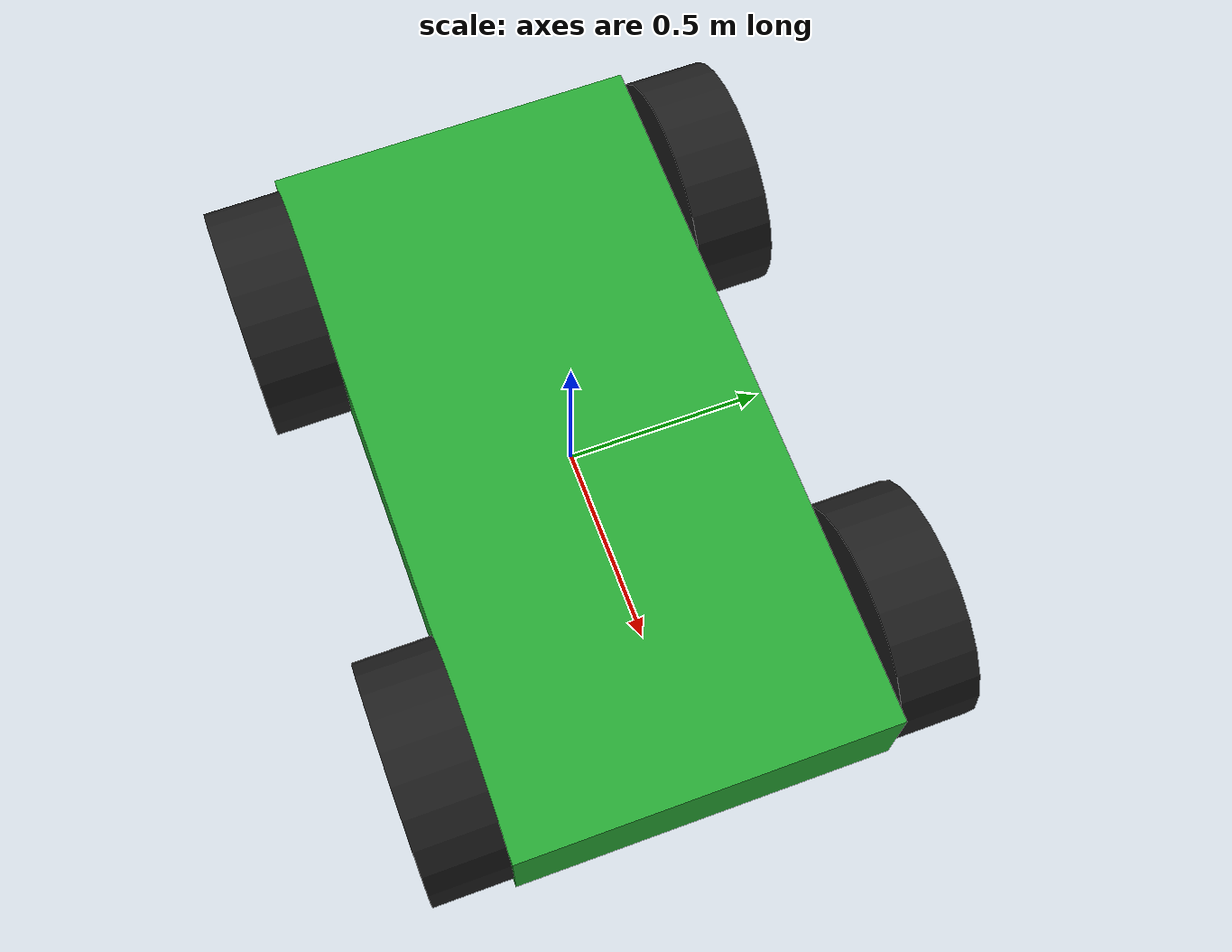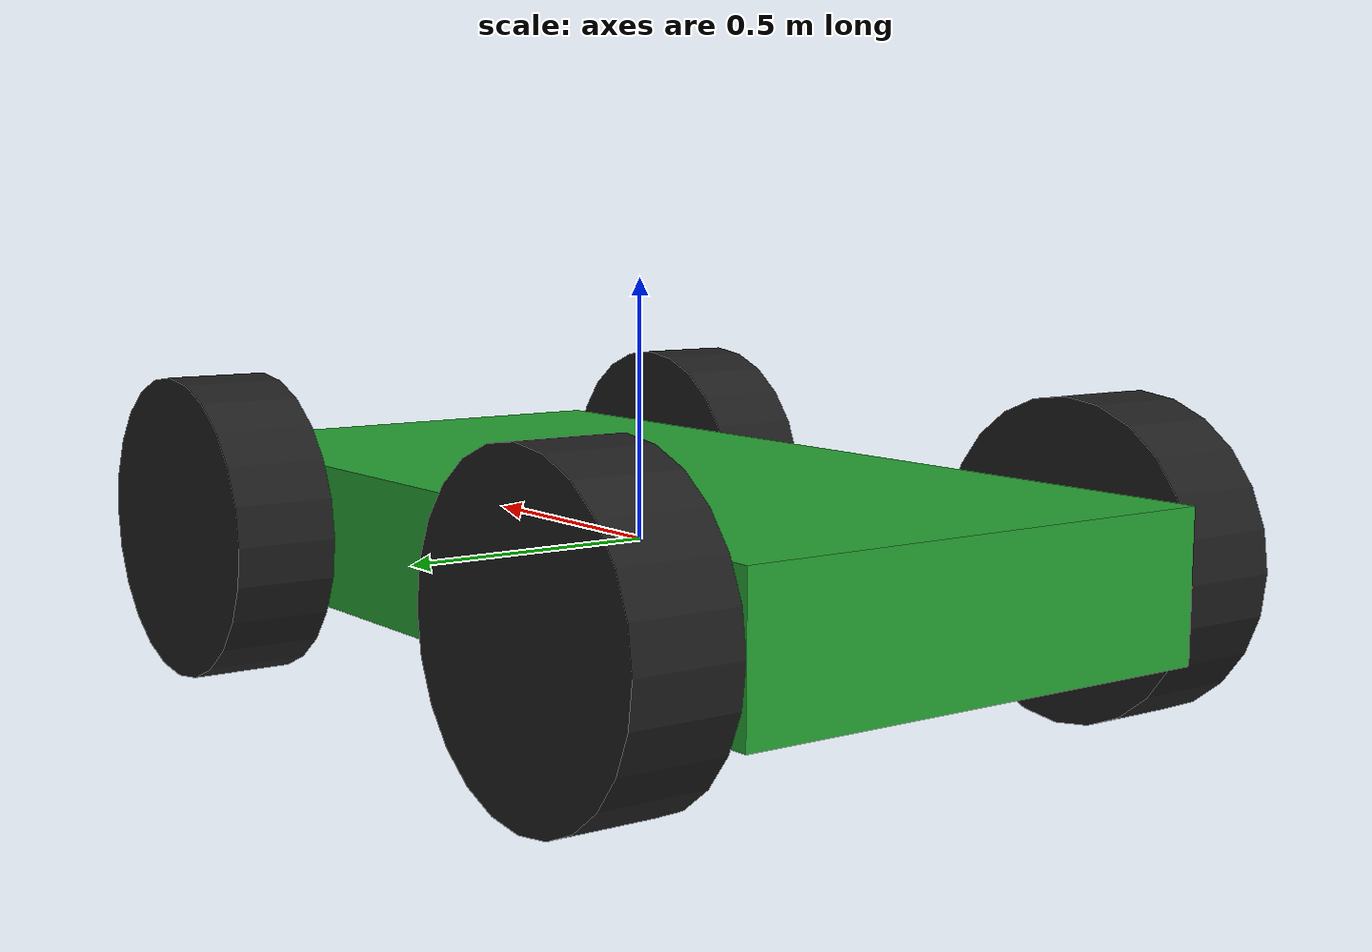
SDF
<?xml version='1.0'?>
<sdf version='1.6'>
  <model name='my_robot'>
    <link name='link_2'>
      <pose frame=''>0 0 0 0 -0 0</pose>
      <inertial>
        <mass>0.334412</mass>
        <inertia>
          <ixx>0.0200489</ixx>
          <ixy>0</ixy>
          <ixz>0</ixz>
          <iyy>0.0331759</iyy>
          <iyz>0</iyz>
          <izz>0.0360631</izz>
        </inertia>
        <pose frame=''>0 0 0 0 -0 0</pose>
      </inertial>
      <gravity>1</gravity>
      <self_collide>0</self_collide>
      <kinematic>0</kinematic>
      <visual name='visual'>
        <pose frame=''>0 0 0 0 -0 0</pose>
        <geometry>
          <box>
            <size>1.8789 0.962232 0.277472</size>
          </box>
        </geometry>
        <material>
          <lighting>1</lighting>
          <script>
            <uri>file://media/materials/scripts/gazebo.material</uri>
            <name>Gazebo/Green</name>
          </script>
          <ambient>1 0 0 1</ambient>
          <diffuse>1 0 0 1</diffuse>
          <specular>0 0 0 0</specular>
          <emissive>0 0 0 1</emissive>
          <shader type='vertex'>
            <normal_map>__default__</normal_map>
          </shader>
        </material>
        <transparency>0</transparency>
        <cast_shadows>1</cast_shadows>
      </visual>
      <collision name='collision'>
        <laser_retro>0</laser_retro>
        <max_contacts>10</max_contacts>
        <pose frame=''>0 0 0 0 -0 0</pose>
        <geometry>
          <box>
            <size>1.8789 0.962232 0.277472</size>
          </box>
        </geometry>
        <surface>
          <friction>
            <ode>
              <mu>1</mu>
              <mu2>1</mu2>
              <fdir1>0 0 0</fdir1>
              <slip1>0</slip1>
              <slip2>0</slip2>
            </ode>
            <torsional>
              <coefficient>1</coefficient>
              <patch_radius>0</patch_radius>
              <surface_radius>0</surface_radius>
              <use_patch_radius>1</use_patch_radius>
              <ode>
                <slip>0</slip>
              </ode>
            </torsional>
          </friction>
          <bounce>
            <restitution_coefficient>0</restitution_coefficient>
            <threshold>1e+06</threshold>
          </bounce>
          <contact>
            <collide_without_contact>0</collide_without_contact>
            <collide_without_contact_bitmask>1</collide_without_contact_bitmask>
            <collide_bitmask>1</collide_bitmask>
            <ode>
              <soft_cfm>0</soft_cfm>
              <soft_erp>0.2</soft_erp>
              <kp>1e+13</kp>
              <kd>1</kd>
              <max_vel>0.01</max_vel>
              <min_depth>0</min_depth>
            </ode>
            <bullet>
              <split_impulse>1</split_impulse>
              <split_impulse_penetration_threshold>-0.01</split_impulse_penetration_threshold>
              <soft_cfm>0</soft_cfm>
              <soft_erp>0.2</soft_erp>
              <kp>1e+13</kp>
              <kd>1</kd>
            </bullet>
          </contact>
        </surface>
      </collision>
    </link>
    <link name='link_3'>
      <pose frame=''>-0.639449 -0.581145 0 1.5707 -0 0</pose>
      <inertial>
        <mass>1</mass>
        <inertia>
          <ixx>0.145833</ixx>
          <ixy>0</ixy>
          <ixz>0</ixz>
          <iyy>0.145833</iyy>
          <iyz>0</iyz>
          <izz>0.125</izz>
        </inertia>
        <pose frame=''>0 0 0 0 -0 0</pose>
      </inertial>
      <gravity>1</gravity>
      <self_collide>0</self_collide>
      <kinematic>0</kinematic>
      <visual name='visual'>
        <pose frame=''>0 0 0 0 -0 0</pose>
        <geometry>
          <cylinder>
            <radius>0.3</radius>
            <length>0.2</length>
          </cylinder>
        </geometry>
        <material>
          <lighting>1</lighting>
          <script>
            <uri>file://media/materials/scripts/gazebo.material</uri>
            <name>Gazebo/black</name>
          </script>
          <ambient>0 0 0 0</ambient>
          <diffuse>0 0 0 0</diffuse>
          <specular>0 0 0 0</specular>
          <emissive>0 0 0 1</emissive>
          <shader type='vertex'>
            <normal_map>__default__</normal_map>
          </shader>
        </material>
        <transparency>0</transparency>
        <cast_shadows>1</cast_shadows>
      </visual>
      <collision name='collision'>
        <laser_retro>0</laser_retro>
        <max_contacts>10</max_contacts>
        <pose frame=''>0 0 0 0 -0 0</pose>
        <geometry>
          <cylinder>
            <radius>0.3</radius>
            <length>0.2</length>
          </cylinder>
        </geometry>
        <surface>
          <friction>
            <ode>
              <mu>1</mu>
              <mu2>1</mu2>
              <fdir1>0 0 0</fdir1>
              <slip1>0</slip1>
              <slip2>0</slip2>
            </ode>
            <torsional>
              <coefficient>1</coefficient>
              <patch_radius>0</patch_radius>
              <surface_radius>0</surface_radius>
              <use_patch_radius>1</use_patch_radius>
              <ode>
                <slip>0</slip>
              </ode>
            </torsional>
          </friction>
          <bounce>
            <restitution_coefficient>0</restitution_coefficient>
            <threshold>1e+06</threshold>
          </bounce>
          <contact>
            <collide_without_contact>0</collide_without_contact>
            <collide_without_contact_bitmask>1</collide_without_contact_bitmask>
            <collide_bitmask>1</collide_bitmask>
            <ode>
              <soft_cfm>0</soft_cfm>
              <soft_erp>0.2</soft_erp>
              <kp>1e+13</kp>
              <kd>1</kd>
              <max_vel>0.01</max_vel>
              <min_depth>0</min_depth>
            </ode>
            <bullet>
              <split_impulse>1</split_impulse>
              <split_impulse_penetration_threshold>-0.01</split_impulse_penetration_threshold>
              <soft_cfm>0</soft_cfm>
              <soft_erp>0.2</soft_erp>
              <kp>1e+13</kp>
              <kd>1</kd>
            </bullet>
          </contact>
        </surface>
      </collision>
    </link>
    <link name='link_3_clone'>
      <pose frame=''>0.639449 -0.581145 0 1.5707 -0 0</pose>
      <inertial>
        <mass>1</mass>
        <inertia>
          <ixx>0.145833</ixx>
          <ixy>0</ixy>
          <ixz>0</ixz>
          <iyy>0.145833</iyy>
          <iyz>0</iyz>
          <izz>0.125</izz>
        </inertia>
        <pose frame=''>0 0 0 0 -0 0</pose>
      </inertial>
      <self_collide>0</self_collide>
      <kinematic>0</kinematic>
      <gravity>1</gravity>
      <visual name='visual'>
        <pose frame=''>0 0 0 0 -0 0</pose>
        <geometry>
          <cylinder>
            <radius>0.3</radius>
            <length>0.2</length>
          </cylinder>
        </geometry>
        <material>
          <lighting>1</lighting>
          <script>
            <uri>file://media/materials/scripts/gazebo.material</uri>
            <name>Gazebo/black</name>
          </script>
          <ambient>0 0 0 0</ambient>
          <diffuse>0 0 0 0</diffuse>
          <specular>0 0 0 0</specular>
          <emissive>0 0 0 1</emissive>
          <shader type='vertex'>
            <normal_map>__default__</normal_map>
          </shader>
        </material>
        <transparency>0</transparency>
        <cast_shadows>1</cast_shadows>
      </visual>
      <collision name='collision'>
        <laser_retro>0</laser_retro>
        <max_contacts>10</max_contacts>
        <pose frame=''>0 0 0 0 -0 0</pose>
        <geometry>
          <cylinder>
            <radius>0.3</radius>
            <length>0.2</length>
          </cylinder>
        </geometry>
        <surface>
          <friction>
            <ode>
              <mu>1</mu>
              <mu2>1</mu2>
              <fdir1>0 0 0</fdir1>
              <slip1>0</slip1>
              <slip2>0</slip2>
            </ode>
            <torsional>
              <coefficient>1</coefficient>
              <patch_radius>0</patch_radius>
              <surface_radius>0</surface_radius>
              <use_patch_radius>1</use_patch_radius>
              <ode>
                <slip>0</slip>
              </ode>
            </torsional>
          </friction>
          <bounce>
            <restitution_coefficient>0</restitution_coefficient>
            <threshold>1e+06</threshold>
          </bounce>
          <contact>
            <collide_without_contact>0</collide_without_contact>
            <collide_without_contact_bitmask>1</collide_without_contact_bitmask>
            <collide_bitmask>1</collide_bitmask>
            <ode>
              <soft_cfm>0</soft_cfm>
              <soft_erp>0.2</soft_erp>
              <kp>1e+13</kp>
              <kd>1</kd>
              <max_vel>0.01</max_vel>
              <min_depth>0</min_depth>
            </ode>
            <bullet>
              <split_impulse>1</split_impulse>
              <split_impulse_penetration_threshold>-0.01</split_impulse_penetration_threshold>
              <soft_cfm>0</soft_cfm>
              <soft_erp>0.2</soft_erp>
              <kp>1e+13</kp>
              <kd>1</kd>
            </bullet>
          </contact>
        </surface>
      </collision>
    </link>
    <link name='link_3_clone_0'>
      <pose frame=''>0.639449 0.581145 0 1.5707 -0 0</pose>
      <inertial>
        <mass>1</mass>
        <inertia>
          <ixx>0.145833</ixx>
          <ixy>0</ixy>
          <ixz>0</ixz>
          <iyy>0.145833</iyy>
          <iyz>0</iyz>
          <izz>0.125</izz>
        </inertia>
        <pose frame=''>0 0 0 0 -0 0</pose>
      </inertial>
      <self_collide>0</self_collide>
      <kinematic>0</kinematic>
      <gravity>1</gravity>
      <visual name='visual'>
        <pose frame=''>0 0 0 0 -0 0</pose>
        <geometry>
          <cylinder>
            <radius>0.3</radius>
            <length>0.2</length>
          </cylinder>
        </geometry>
        <material>
          <lighting>1</lighting>
          <script>
            <uri>file://media/materials/scripts/gazebo.material</uri>
            <name>Gazebo/black</name>
          </script>
          <ambient>0 0 0 0</ambient>
          <diffuse>0 0 0 0</diffuse>
          <specular>0 0 0 0</specular>
          <emissive>0 0 0 1</emissive>
          <shader type='vertex'>
            <normal_map>__default__</normal_map>
          </shader>
        </material>
        <transparency>0</transparency>
        <cast_shadows>1</cast_shadows>
      </visual>
      <collision name='collision'>
        <laser_retro>0</laser_retro>
        <max_contacts>10</max_contacts>
        <pose frame=''>0 0 0 0 -0 0</pose>
        <geometry>
          <cylinder>
            <radius>0.3</radius>
            <length>0.2</length>
          </cylinder>
        </geometry>
        <surface>
          <friction>
            <ode>
              <mu>1</mu>
              <mu2>1</mu2>
              <fdir1>0 0 0</fdir1>
              <slip1>0</slip1>
              <slip2>0</slip2>
            </ode>
            <torsional>
              <coefficient>1</coefficient>
              <patch_radius>0</patch_radius>
              <surface_radius>0</surface_radius>
              <use_patch_radius>1</use_patch_radius>
              <ode>
                <slip>0</slip>
              </ode>
            </torsional>
          </friction>
          <bounce>
            <restitution_coefficient>0</restitution_coefficient>
            <threshold>1e+06</threshold>
          </bounce>
          <contact>
            <collide_without_contact>0</collide_without_contact>
            <collide_without_contact_bitmask>1</collide_without_contact_bitmask>
            <collide_bitmask>1</collide_bitmask>
            <ode>
              <soft_cfm>0</soft_cfm>
              <soft_erp>0.2</soft_erp>
              <kp>1e+13</kp>
              <kd>1</kd>
              <max_vel>0.01</max_vel>
              <min_depth>0</min_depth>
            </ode>
            <bullet>
              <split_impulse>1</split_impulse>
              <split_impulse_penetration_threshold>-0.01</split_impulse_penetration_threshold>
              <soft_cfm>0</soft_cfm>
              <soft_erp>0.2</soft_erp>
              <kp>1e+13</kp>
              <kd>1</kd>
            </bullet>
          </contact>
        </surface>
      </collision>
    </link>
    <link name='link_3_clone_1'>
      <pose frame=''>-0.639449 0.581145 0 1.5707 -0 0</pose>
      <inertial>
        <mass>1</mass>
        <inertia>
          <ixx>0.145833</ixx>
          <ixy>0</ixy>
          <ixz>0</ixz>
          <iyy>0.145833</iyy>
          <iyz>0</iyz>
          <izz>0.125</izz>
        </inertia>
        <pose frame=''>0 0 0 0 -0 0</pose>
      </inertial>
      <self_collide>0</self_collide>
      <kinematic>0</kinematic>
      <gravity>1</gravity>
      <visual name='visual'>
        <pose frame=''>0 0 0 0 -0 0</pose>
        <geometry>
          <cylinder>
            <radius>0.3</radius>
            <length>0.2</length>
          </cylinder>
        </geometry>
        <material>
          <lighting>1</lighting>
          <script>
            <uri>file://media/materials/scripts/gazebo.material</uri>
            <name>Gazebo/black</name>
          </script>
          <ambient>0 0 0 0</ambient>
          <diffuse>0 0 0 0</diffuse>
          <specular>0 0 0 0</specular>
          <emissive>0 0 0 1</emissive>
          <shader type='vertex'>
            <normal_map>__default__</normal_map>
          </shader>
        </material>
        <transparency>0</transparency>
        <cast_shadows>1</cast_shadows>
      </visual>
      <collision name='collision'>
        <laser_retro>0</laser_retro>
        <max_contacts>10</max_contacts>
        <pose frame=''>0 0 0 0 -0 0</pose>
        <geometry>
          <cylinder>
            <radius>0.3</radius>
            <length>0.2</length>
          </cylinder>
        </geometry>
        <surface>
          <friction>
            <ode>
              <mu>1</mu>
              <mu2>1</mu2>
              <fdir1>0 0 0</fdir1>
              <slip1>0</slip1>
              <slip2>0</slip2>
            </ode>
            <torsional>
              <coefficient>1</coefficient>
              <patch_radius>0</patch_radius>
              <surface_radius>0</surface_radius>
              <use_patch_radius>1</use_patch_radius>
              <ode>
                <slip>0</slip>
              </ode>
            </torsional>
          </friction>
          <bounce>
            <restitution_coefficient>0</restitution_coefficient>
            <threshold>1e+06</threshold>
          </bounce>
          <contact>
            <collide_without_contact>0</collide_without_contact>
            <collide_without_contact_bitmask>1</collide_without_contact_bitmask>
            <collide_bitmask>1</collide_bitmask>
            <ode>
              <soft_cfm>0</soft_cfm>
              <soft_erp>0.2</soft_erp>
              <kp>1e+13</kp>
              <kd>1</kd>
              <max_vel>0.01</max_vel>
              <min_depth>0</min_depth>
            </ode>
            <bullet>
              <split_impulse>1</split_impulse>
              <split_impulse_penetration_threshold>-0.01</split_impulse_penetration_threshold>
              <soft_cfm>0</soft_cfm>
              <soft_erp>0.2</soft_erp>
              <kp>1e+13</kp>
              <kd>1</kd>
            </bullet>
          </contact>
        </surface>
      </collision>
    </link>
    <joint name='link_2_JOINT_5' type='revolute'>
      <parent>link_2</parent>
      <child>link_3_clone</child>
      <pose frame=''>0 0 0 0 -0 0</pose>
      <axis>
        <xyz>0 0 1</xyz>
        <use_parent_model_frame>0</use_parent_model_frame>
        <limit>
          <lower>-1.79769e+308</lower>
          <upper>1.79769e+308</upper>
          <effort>-1</effort>
          <velocity>-1</velocity>
        </limit>
        <dynamics>
          <spring_reference>0</spring_reference>
          <spring_stiffness>0</spring_stiffness>
          <damping>0</damping>
        </dynamics>
      </axis>
      <physics>
        <ode>
          <limit>
            <cfm>0</cfm>
            <erp>0.2</erp>
          </limit>
          <suspension>
            <cfm>0</cfm>
            <erp>0.2</erp>
          </suspension>
        </ode>
      </physics>
    </joint>
    <joint name='link_2_JOINT_6' type='revolute'>
      <parent>link_2</parent>
      <child>link_3_clone_0</child>
      <pose frame=''>0 0 0 0 -0 0</pose>
      <axis>
        <xyz>0 0 1</xyz>
        <use_parent_model_frame>0</use_parent_model_frame>
        <limit>
          <lower>-1.79769e+308</lower>
          <upper>1.79769e+308</upper>
          <effort>-1</effort>
          <velocity>-1</velocity>
        </limit>
        <dynamics>
          <spring_reference>0</spring_reference>
          <spring_stiffness>0</spring_stiffness>
          <damping>0</damping>
        </dynamics>
      </axis>
      <physics>
        <ode>
          <limit>
            <cfm>0</cfm>
            <erp>0.2</erp>
          </limit>
          <suspension>
            <cfm>0</cfm>
            <erp>0.2</erp>
          </suspension>
        </ode>
      </physics>
    </joint>
    <joint name='link_2_JOINT_7' type='revolute'>
      <parent>link_2</parent>
      <child>link_3</child>
      <pose frame=''>0 0 0 0 -0 0</pose>
      <axis>
        <xyz>0 0 1</xyz>
        <use_parent_model_frame>0</use_parent_model_frame>
        <limit>
          <lower>-1.79769e+308</lower>
          <upper>1.79769e+308</upper>
          <effort>-1</effort>
          <velocity>-1</velocity>
        </limit>
        <dynamics>
          <spring_reference>0</spring_reference>
          <spring_stiffness>0</spring_stiffness>
          <damping>0</damping>
        </dynamics>
      </axis>
      <physics>
        <ode>
          <limit>
            <cfm>0</cfm>
            <erp>0.2</erp>
          </limit>
          <suspension>
            <cfm>0</cfm>
            <erp>0.2</erp>
          </suspension>
        </ode>
      </physics>
    </joint>
    <joint name='link_2_JOINT_8' type='revolute'>
      <parent>link_2</parent>
      <child>link_3_clone_1</child>
      <pose frame=''>0 0 0 0 -0 0</pose>
      <axis>
        <xyz>0 0 1</xyz>
        <use_parent_model_frame>0</use_parent_model_frame>
        <limit>
          <lower>-1.79769e+308</lower>
          <upper>1.79769e+308</upper>
          <effort>-1</effort>
          <velocity>-1</velocity>
        </limit>
        <dynamics>
          <spring_reference>0</spring_reference>
          <spring_stiffness>0</spring_stiffness>
          <damping>0</damping>
        </dynamics>
      </axis>
      <physics>
        <ode>
          <limit>
            <cfm>0</cfm>
            <erp>0.2</erp>
          </limit>
          <suspension>
            <cfm>0</cfm>
            <erp>0.2</erp>
          </suspension>
        </ode>
      </physics>
    </joint>
    <static>0</static>
    <allow_auto_disable>1</allow_auto_disable>
  </model>
</sdf>
